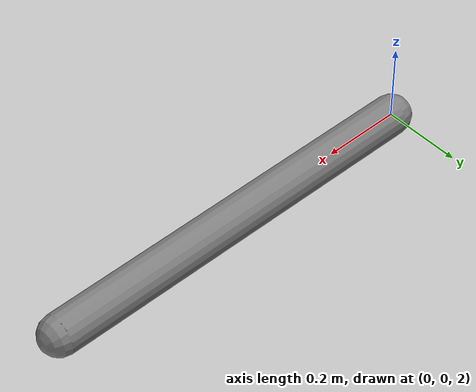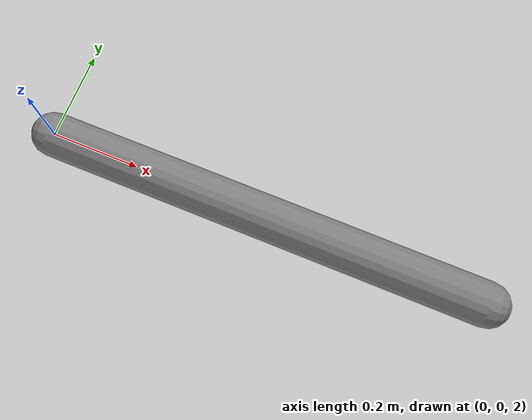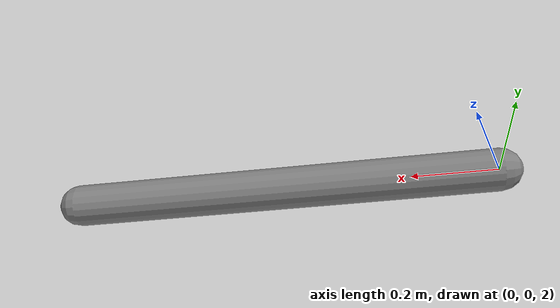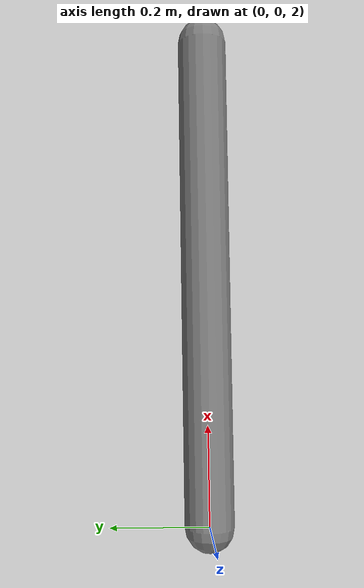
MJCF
<mujoco model="simple_pendulum">
  <compiler angle="degree" coordinate="local"/>
  <option timestep="0.01" gravity="0 0 -9.81"/>
  <worldbody>
    <light pos="0 0 5"/>
    <body name="pendulum" pos="0 0 2">
      <joint name="hinge" type="hinge" axis="0 1 0" damping="0.1"/>
      <geom type="capsule" size="0.05" fromto="0 0 0 1 0 0" mass="1"/>
    </body>
  </worldbody>
</mujoco>
